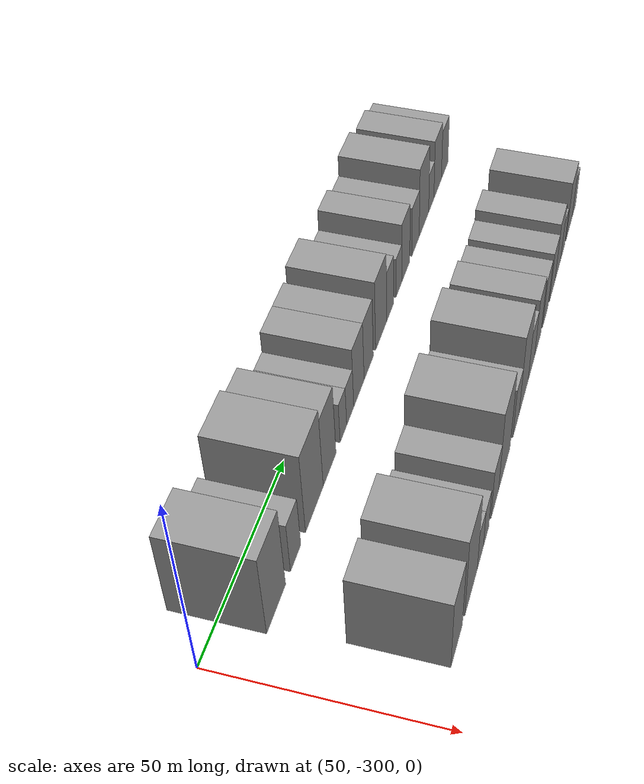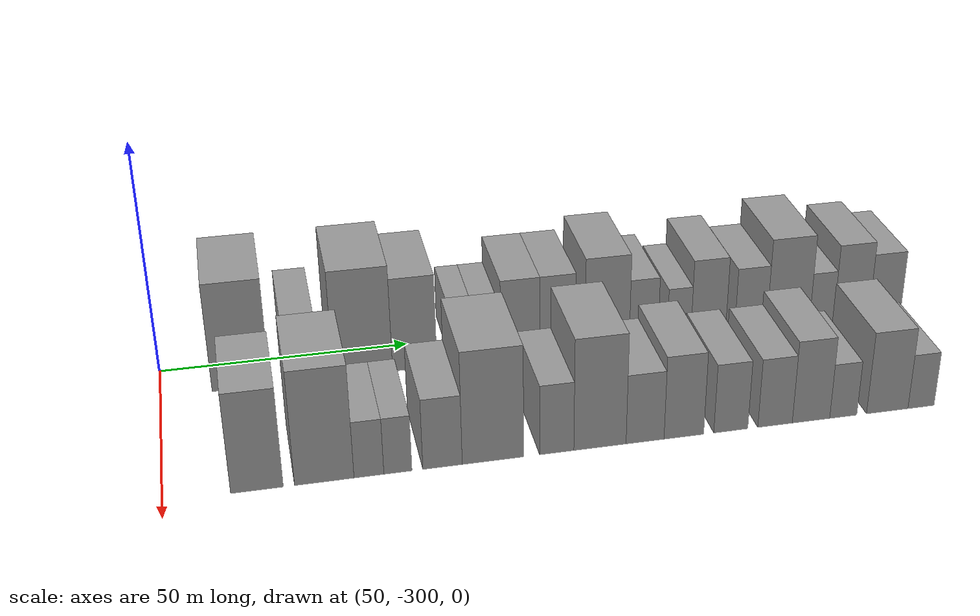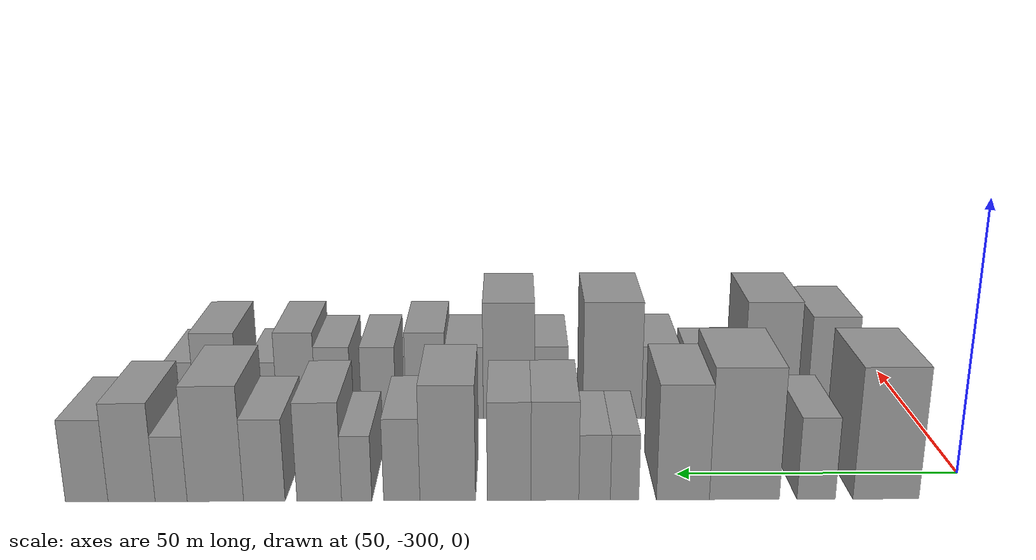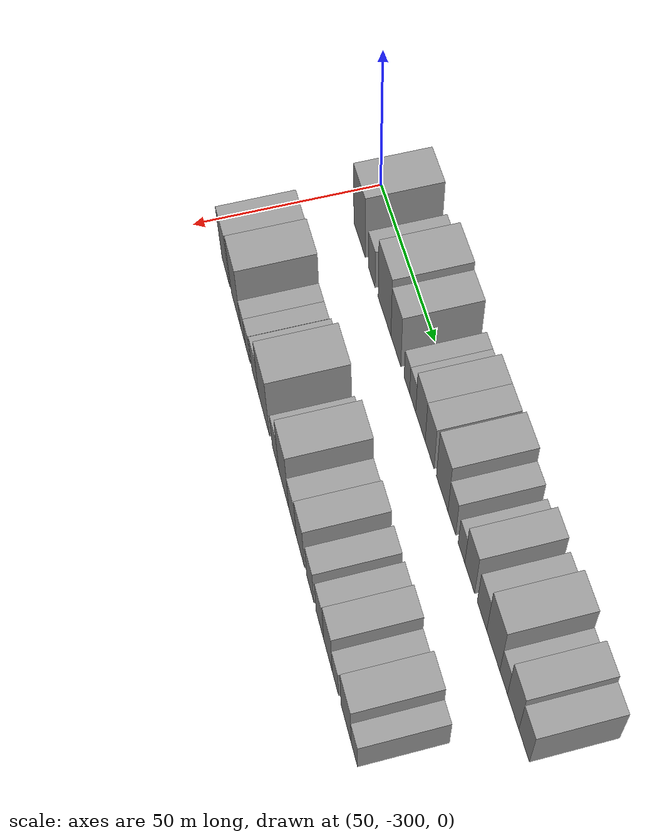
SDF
<sdf version="1.6">
 <world name="default">
  <model name="building_1">
   <static>1</static>
   <pose>50.0000 -284.3592 0 0.000000 0.000000 0.000000</pose>
   <link name="link">
    <pose>0 0 12.00 0 0 0</pose>
    <collision name="collision"><geometry><box><size>20.0000 11.2816 24.0000</size></box></geometry></collision>
    <visual name="visual">
     <cast_shadows>0</cast_shadows>
     <geometry><box><size>20.0000 11.2816 24.0000</size></box></geometry>
     <material>
      <script>
       <uri>model://grey_wall/materials/scripts</uri>
       <uri>model://grey_wall/materials/textures</uri>
       <name>vrc/grey_wall</name>
      </script>
     </material>
    </visual>
   </link>
  </model>
  <model name="building_2">
   <static>1</static>
   <pose>50.0000 -272.4377 0 0.000000 0.000000 0.000000</pose>
   <link name="link">
    <pose>0 0 7.50 0 0 0</pose>
    <collision name="collision"><geometry><box><size>20.0000 6.5613 15.0000</size></box></geometry></collision>
    <visual name="visual">
     <cast_shadows>0</cast_shadows>
     <geometry><box><size>20.0000 6.5613 15.0000</size></box></geometry>
     <material>
      <script>
       <uri>model://grey_wall/materials/scripts</uri>
       <uri>model://grey_wall/materials/textures</uri>
       <name>vrc/grey_wall</name>
      </script>
     </material>
    </visual>
   </link>
  </model>
  <model name="building_3">
   <static>1</static>
   <pose>50.0000 -260.1841 0 0.000000 0.000000 0.000000</pose>
   <link name="link">
    <pose>0 0 12.00 0 0 0</pose>
    <collision name="collision"><geometry><box><size>20.0000 11.9459 24.0000</size></box></geometry></collision>
    <visual name="visual">
     <cast_shadows>0</cast_shadows>
     <geometry><box><size>20.0000 11.9459 24.0000</size></box></geometry>
     <material>
      <script>
       <uri>model://grey_wall/materials/scripts</uri>
       <uri>model://grey_wall/materials/textures</uri>
       <name>vrc/grey_wall</name>
      </script>
     </material>
    </visual>
   </link>
  </model>
  <model name="building_4">
   <static>1</static>
   <pose>50.0000 -249.6946 0 0.000000 0.000000 0.000000</pose>
   <link name="link">
    <pose>0 0 10.50 0 0 0</pose>
    <collision name="collision"><geometry><box><size>20.0000 9.0331 21.0000</size></box></geometry></collision>
    <visual name="visual">
     <cast_shadows>0</cast_shadows>
     <geometry><box><size>20.0000 9.0331 21.0000</size></box></geometry>
     <material>
      <script>
       <uri>model://grey_wall/materials/scripts</uri>
       <uri>model://grey_wall/materials/textures</uri>
       <name>vrc/grey_wall</name>
      </script>
     </material>
    </visual>
   </link>
  </model>
  <model name="building_5">
   <static>1</static>
   <pose>50.0000 -239.7531 0 0.000000 0.000000 0.000000</pose>
   <link name="link">
    <pose>0 0 6.00 0 0 0</pose>
    <collision name="collision"><geometry><box><size>20.0000 4.8501 12.0000</size></box></geometry></collision>
    <visual name="visual">
     <cast_shadows>0</cast_shadows>
     <geometry><box><size>20.0000 4.8501 12.0000</size></box></geometry>
     <material>
      <script>
       <uri>model://grey_wall/materials/scripts</uri>
       <uri>model://grey_wall/materials/textures</uri>
       <name>vrc/grey_wall</name>
      </script>
     </material>
    </visual>
   </link>
  </model>
  <model name="building_6">
   <static>1</static>
   <pose>50.0000 -234.6435 0 0.000000 0.000000 0.000000</pose>
   <link name="link">
    <pose>0 0 6.00 0 0 0</pose>
    <collision name="collision"><geometry><box><size>20.0000 5.3691 12.0000</size></box></geometry></collision>
    <visual name="visual">
     <cast_shadows>0</cast_shadows>
     <geometry><box><size>20.0000 5.3691 12.0000</size></box></geometry>
     <material>
      <script>
       <uri>model://grey_wall/materials/scripts</uri>
       <uri>model://grey_wall/materials/textures</uri>
       <name>vrc/grey_wall</name>
      </script>
     </material>
    </visual>
   </link>
  </model>
  <model name="building_7">
   <static>1</static>
   <pose>50.0000 -227.8935 0 0.000000 0.000000 0.000000</pose>
   <link name="link">
    <pose>0 0 9.00 0 0 0</pose>
    <collision name="collision"><geometry><box><size>20.0000 8.1309 18.0000</size></box></geometry></collision>
    <visual name="visual">
     <cast_shadows>0</cast_shadows>
     <geometry><box><size>20.0000 8.1309 18.0000</size></box></geometry>
     <material>
      <script>
       <uri>model://grey_wall/materials/scripts</uri>
       <uri>model://grey_wall/materials/textures</uri>
       <name>vrc/grey_wall</name>
      </script>
     </material>
    </visual>
   </link>
  </model>
  <model name="building_8">
   <static>1</static>
   <pose>50.0000 -220.1073 0 0.000000 0.000000 0.000000</pose>
   <link name="link">
    <pose>0 0 9.00 0 0 0</pose>
    <collision name="collision"><geometry><box><size>20.0000 7.4415 18.0000</size></box></geometry></collision>
    <visual name="visual">
     <cast_shadows>0</cast_shadows>
     <geometry><box><size>20.0000 7.4415 18.0000</size></box></geometry>
     <material>
      <script>
       <uri>model://grey_wall/materials/scripts</uri>
       <uri>model://grey_wall/materials/textures</uri>
       <name>vrc/grey_wall</name>
      </script>
     </material>
    </visual>
   </link>
  </model>
  <model name="building_9">
   <static>1</static>
   <pose>50.0000 -209.6560 0 0.000000 0.000000 0.000000</pose>
   <link name="link">
    <pose>0 0 10.50 0 0 0</pose>
    <collision name="collision"><geometry><box><size>20.0000 9.4611 21.0000</size></box></geometry></collision>
    <visual name="visual">
     <cast_shadows>0</cast_shadows>
     <geometry><box><size>20.0000 9.4611 21.0000</size></box></geometry>
     <material>
      <script>
       <uri>model://grey_wall/materials/scripts</uri>
       <uri>model://grey_wall/materials/textures</uri>
       <name>vrc/grey_wall</name>
      </script>
     </material>
    </visual>
   </link>
  </model>
  <model name="building_10">
   <static>1</static>
   <pose>50.0000 -201.8469 0 0.000000 0.000000 0.000000</pose>
   <link name="link">
    <pose>0 0 7.50 0 0 0</pose>
    <collision name="collision"><geometry><box><size>20.0000 6.1570 15.0000</size></box></geometry></collision>
    <visual name="visual">
     <cast_shadows>0</cast_shadows>
     <geometry><box><size>20.0000 6.1570 15.0000</size></box></geometry>
     <material>
      <script>
       <uri>model://grey_wall/materials/scripts</uri>
       <uri>model://grey_wall/materials/textures</uri>
       <name>vrc/grey_wall</name>
      </script>
     </material>
    </visual>
   </link>
  </model>
  <model name="building_11">
   <static>1</static>
   <pose>50.0000 -194.1964 0 0.000000 0.000000 0.000000</pose>
   <link name="link">
    <pose>0 0 6.00 0 0 0</pose>
    <collision name="collision"><geometry><box><size>20.0000 5.1440 12.0000</size></box></geometry></collision>
    <visual name="visual">
     <cast_shadows>0</cast_shadows>
     <geometry><box><size>20.0000 5.1440 12.0000</size></box></geometry>
     <material>
      <script>
       <uri>model://grey_wall/materials/scripts</uri>
       <uri>model://grey_wall/materials/textures</uri>
       <name>vrc/grey_wall</name>
      </script>
     </material>
    </visual>
   </link>
  </model>
  <model name="building_12">
   <static>1</static>
   <pose>50.0000 -187.8328 0 0.000000 0.000000 0.000000</pose>
   <link name="link">
    <pose>0 0 9.00 0 0 0</pose>
    <collision name="collision"><geometry><box><size>20.0000 7.5832 18.0000</size></box></geometry></collision>
    <visual name="visual">
     <cast_shadows>0</cast_shadows>
     <geometry><box><size>20.0000 7.5832 18.0000</size></box></geometry>
     <material>
      <script>
       <uri>model://grey_wall/materials/scripts</uri>
       <uri>model://grey_wall/materials/textures</uri>
       <name>vrc/grey_wall</name>
      </script>
     </material>
    </visual>
   </link>
  </model>
  <model name="building_13">
   <static>1</static>
   <pose>50.0000 -178.5126 0 0.000000 0.000000 0.000000</pose>
   <link name="link">
    <pose>0 0 7.50 0 0 0</pose>
    <collision name="collision"><geometry><box><size>20.0000 7.0572 15.0000</size></box></geometry></collision>
    <visual name="visual">
     <cast_shadows>0</cast_shadows>
     <geometry><box><size>20.0000 7.0572 15.0000</size></box></geometry>
     <material>
      <script>
       <uri>model://grey_wall/materials/scripts</uri>
       <uri>model://grey_wall/materials/textures</uri>
       <name>vrc/grey_wall</name>
      </script>
     </material>
    </visual>
   </link>
  </model>
  <model name="building_14">
   <static>1</static>
   <pose>50.0000 -170.2077 0 0.000000 0.000000 0.000000</pose>
   <link name="link">
    <pose>0 0 10.50 0 0 0</pose>
    <collision name="collision"><geometry><box><size>20.0000 9.5524 21.0000</size></box></geometry></collision>
    <visual name="visual">
     <cast_shadows>0</cast_shadows>
     <geometry><box><size>20.0000 9.5524 21.0000</size></box></geometry>
     <material>
      <script>
       <uri>model://grey_wall/materials/scripts</uri>
       <uri>model://grey_wall/materials/textures</uri>
       <name>vrc/grey_wall</name>
      </script>
     </material>
    </visual>
   </link>
  </model>
  <model name="building_15">
   <static>1</static>
   <pose>50.0000 -162.7156 0 0.000000 0.000000 0.000000</pose>
   <link name="link">
    <pose>0 0 6.00 0 0 0</pose>
    <collision name="collision"><geometry><box><size>20.0000 5.4319 12.0000</size></box></geometry></collision>
    <visual name="visual">
     <cast_shadows>0</cast_shadows>
     <geometry><box><size>20.0000 5.4319 12.0000</size></box></geometry>
     <material>
      <script>
       <uri>model://grey_wall/materials/scripts</uri>
       <uri>model://grey_wall/materials/textures</uri>
       <name>vrc/grey_wall</name>
      </script>
     </material>
    </visual>
   </link>
  </model>
  <model name="building_16">
   <static>1</static>
   <pose>50.0000 -156.0095 0 0.000000 0.000000 0.000000</pose>
   <link name="link">
    <pose>0 0 9.00 0 0 0</pose>
    <collision name="collision"><geometry><box><size>20.0000 7.9802 18.0000</size></box></geometry></collision>
    <visual name="visual">
     <cast_shadows>0</cast_shadows>
     <geometry><box><size>20.0000 7.9802 18.0000</size></box></geometry>
     <material>
      <script>
       <uri>model://grey_wall/materials/scripts</uri>
       <uri>model://grey_wall/materials/textures</uri>
       <name>vrc/grey_wall</name>
      </script>
     </material>
    </visual>
   </link>
  </model>
  <model name="building_17">
   <static>1</static>
   <pose>50.0000 -148.4073 0 0.000000 0.000000 0.000000</pose>
   <link name="link">
    <pose>0 0 7.50 0 0 0</pose>
    <collision name="collision"><geometry><box><size>20.0000 7.2241 15.0000</size></box></geometry></collision>
    <visual name="visual">
     <cast_shadows>0</cast_shadows>
     <geometry><box><size>20.0000 7.2241 15.0000</size></box></geometry>
     <material>
      <script>
       <uri>model://grey_wall/materials/scripts</uri>
       <uri>model://grey_wall/materials/textures</uri>
       <name>vrc/grey_wall</name>
      </script>
     </material>
    </visual>
   </link>
  </model>
  <model name="building_67">
   <static>1</static>
   <pose>85.0000 -283.3280 0 0.000000 0.000000 0.000000</pose>
   <link name="link">
    <pose>0 0 10.50 0 0 0</pose>
    <collision name="collision"><geometry><box><size>20.0000 9.3441 21.0000</size></box></geometry></collision>
    <visual name="visual">
     <cast_shadows>0</cast_shadows>
     <geometry><box><size>20.0000 9.3441 21.0000</size></box></geometry>
     <material>
      <script>
       <uri>model://grey_wall/materials/scripts</uri>
       <uri>model://grey_wall/materials/textures</uri>
       <name>vrc/grey_wall</name>
      </script>
     </material>
    </visual>
   </link>
  </model>
  <model name="building_68">
   <static>1</static>
   <pose>85.0000 -271.2954 0 0.000000 0.000000 0.000000</pose>
   <link name="link">
    <pose>0 0 12.00 0 0 0</pose>
    <collision name="collision"><geometry><box><size>20.0000 10.7210 24.0000</size></box></geometry></collision>
    <visual name="visual">
     <cast_shadows>0</cast_shadows>
     <geometry><box><size>20.0000 10.7210 24.0000</size></box></geometry>
     <material>
      <script>
       <uri>model://grey_wall/materials/scripts</uri>
       <uri>model://grey_wall/materials/textures</uri>
       <name>vrc/grey_wall</name>
      </script>
     </material>
    </visual>
   </link>
  </model>
  <model name="building_69">
   <static>1</static>
   <pose>85.0000 -263.2185 0 0.000000 0.000000 0.000000</pose>
   <link name="link">
    <pose>0 0 6.00 0 0 0</pose>
    <collision name="collision"><geometry><box><size>20.0000 5.4327 12.0000</size></box></geometry></collision>
    <visual name="visual">
     <cast_shadows>0</cast_shadows>
     <geometry><box><size>20.0000 5.4327 12.0000</size></box></geometry>
     <material>
      <script>
       <uri>model://grey_wall/materials/scripts</uri>
       <uri>model://grey_wall/materials/textures</uri>
       <name>vrc/grey_wall</name>
      </script>
     </material>
    </visual>
   </link>
  </model>
  <model name="building_70">
   <static>1</static>
   <pose>85.0000 -257.9267 0 0.000000 0.000000 0.000000</pose>
   <link name="link">
    <pose>0 0 6.00 0 0 0</pose>
    <collision name="collision"><geometry><box><size>20.0000 5.1511 12.0000</size></box></geometry></collision>
    <visual name="visual">
     <cast_shadows>0</cast_shadows>
     <geometry><box><size>20.0000 5.1511 12.0000</size></box></geometry>
     <material>
      <script>
       <uri>model://grey_wall/materials/scripts</uri>
       <uri>model://grey_wall/materials/textures</uri>
       <name>vrc/grey_wall</name>
      </script>
     </material>
    </visual>
   </link>
  </model>
  <model name="building_71">
   <static>1</static>
   <pose>85.0000 -249.7051 0 0.000000 0.000000 0.000000</pose>
   <link name="link">
    <pose>0 0 7.50 0 0 0</pose>
    <collision name="collision"><geometry><box><size>20.0000 7.2920 15.0000</size></box></geometry></collision>
    <visual name="visual">
     <cast_shadows>0</cast_shadows>
     <geometry><box><size>20.0000 7.2920 15.0000</size></box></geometry>
     <material>
      <script>
       <uri>model://grey_wall/materials/scripts</uri>
       <uri>model://grey_wall/materials/textures</uri>
       <name>vrc/grey_wall</name>
      </script>
     </material>
    </visual>
   </link>
  </model>
  <model name="building_72">
   <static>1</static>
   <pose>85.0000 -240.2894 0 0.000000 0.000000 0.000000</pose>
   <link name="link">
    <pose>0 0 12.00 0 0 0</pose>
    <collision name="collision"><geometry><box><size>20.0000 11.5393 24.0000</size></box></geometry></collision>
    <visual name="visual">
     <cast_shadows>0</cast_shadows>
     <geometry><box><size>20.0000 11.5393 24.0000</size></box></geometry>
     <material>
      <script>
       <uri>model://grey_wall/materials/scripts</uri>
       <uri>model://grey_wall/materials/textures</uri>
       <name>vrc/grey_wall</name>
      </script>
     </material>
    </visual>
   </link>
  </model>
  <model name="building_73">
   <static>1</static>
   <pose>85.0000 -228.2674 0 0.000000 0.000000 0.000000</pose>
   <link name="link">
    <pose>0 0 7.50 0 0 0</pose>
    <collision name="collision"><geometry><box><size>20.0000 6.5048 15.0000</size></box></geometry></collision>
    <visual name="visual">
     <cast_shadows>0</cast_shadows>
     <geometry><box><size>20.0000 6.5048 15.0000</size></box></geometry>
     <material>
      <script>
       <uri>model://grey_wall/materials/scripts</uri>
       <uri>model://grey_wall/materials/textures</uri>
       <name>vrc/grey_wall</name>
      </script>
     </material>
    </visual>
   </link>
  </model>
  <model name="building_74">
   <static>1</static>
   <pose>85.0000 -219.9922 0 0.000000 0.000000 0.000000</pose>
   <link name="link">
    <pose>0 0 12.00 0 0 0</pose>
    <collision name="collision"><geometry><box><size>20.0000 10.0457 24.0000</size></box></geometry></collision>
    <visual name="visual">
     <cast_shadows>0</cast_shadows>
     <geometry><box><size>20.0000 10.0457 24.0000</size></box></geometry>
     <material>
      <script>
       <uri>model://grey_wall/materials/scripts</uri>
       <uri>model://grey_wall/materials/textures</uri>
       <name>vrc/grey_wall</name>
      </script>
     </material>
    </visual>
   </link>
  </model>
  <model name="building_75">
   <static>1</static>
   <pose>85.0000 -211.2774 0 0.000000 0.000000 0.000000</pose>
   <link name="link">
    <pose>0 0 7.50 0 0 0</pose>
    <collision name="collision"><geometry><box><size>20.0000 7.3838 15.0000</size></box></geometry></collision>
    <visual name="visual">
     <cast_shadows>0</cast_shadows>
     <geometry><box><size>20.0000 7.3838 15.0000</size></box></geometry>
     <material>
      <script>
       <uri>model://grey_wall/materials/scripts</uri>
       <uri>model://grey_wall/materials/textures</uri>
       <name>vrc/grey_wall</name>
      </script>
     </material>
    </visual>
   </link>
  </model>
  <model name="building_76">
   <static>1</static>
   <pose>85.0000 -203.6915 0 0.000000 0.000000 0.000000</pose>
   <link name="link">
    <pose>0 0 9.00 0 0 0</pose>
    <collision name="collision"><geometry><box><size>20.0000 7.7880 18.0000</size></box></geometry></collision>
    <visual name="visual">
     <cast_shadows>0</cast_shadows>
     <geometry><box><size>20.0000 7.7880 18.0000</size></box></geometry>
     <material>
      <script>
       <uri>model://grey_wall/materials/scripts</uri>
       <uri>model://grey_wall/materials/textures</uri>
       <name>vrc/grey_wall</name>
      </script>
     </material>
    </visual>
   </link>
  </model>
  <model name="building_77">
   <static>1</static>
   <pose>85.0000 -194.4178 0 0.000000 0.000000 0.000000</pose>
   <link name="link">
    <pose>0 0 7.50 0 0 0</pose>
    <collision name="collision"><geometry><box><size>20.0000 6.7595 15.0000</size></box></geometry></collision>
    <visual name="visual">
     <cast_shadows>0</cast_shadows>
     <geometry><box><size>20.0000 6.7595 15.0000</size></box></geometry>
     <material>
      <script>
       <uri>model://grey_wall/materials/scripts</uri>
       <uri>model://grey_wall/materials/textures</uri>
       <name>vrc/grey_wall</name>
      </script>
     </material>
    </visual>
   </link>
  </model>
  <model name="building_78">
   <static>1</static>
   <pose>85.0000 -185.5821 0 0.000000 0.000000 0.000000</pose>
   <link name="link">
    <pose>0 0 7.50 0 0 0</pose>
    <collision name="collision"><geometry><box><size>20.0000 6.9118 15.0000</size></box></geometry></collision>
    <visual name="visual">
     <cast_shadows>0</cast_shadows>
     <geometry><box><size>20.0000 6.9118 15.0000</size></box></geometry>
     <material>
      <script>
       <uri>model://grey_wall/materials/scripts</uri>
       <uri>model://grey_wall/materials/textures</uri>
       <name>vrc/grey_wall</name>
      </script>
     </material>
    </visual>
   </link>
  </model>
  <model name="building_79">
   <static>1</static>
   <pose>85.0000 -178.3327 0 0.000000 0.000000 0.000000</pose>
   <link name="link">
    <pose>0 0 9.00 0 0 0</pose>
    <collision name="collision"><geometry><box><size>20.0000 7.5872 18.0000</size></box></geometry></collision>
    <visual name="visual">
     <cast_shadows>0</cast_shadows>
     <geometry><box><size>20.0000 7.5872 18.0000</size></box></geometry>
     <material>
      <script>
       <uri>model://grey_wall/materials/scripts</uri>
       <uri>model://grey_wall/materials/textures</uri>
       <name>vrc/grey_wall</name>
      </script>
     </material>
    </visual>
   </link>
  </model>
  <model name="building_80">
   <static>1</static>
   <pose>85.0000 -171.7712 0 0.000000 0.000000 0.000000</pose>
   <link name="link">
    <pose>0 0 6.00 0 0 0</pose>
    <collision name="collision"><geometry><box><size>20.0000 5.5357 12.0000</size></box></geometry></collision>
    <visual name="visual">
     <cast_shadows>0</cast_shadows>
     <geometry><box><size>20.0000 5.5357 12.0000</size></box></geometry>
     <material>
      <script>
       <uri>model://grey_wall/materials/scripts</uri>
       <uri>model://grey_wall/materials/textures</uri>
       <name>vrc/grey_wall</name>
      </script>
     </material>
    </visual>
   </link>
  </model>
  <model name="building_81">
   <static>1</static>
   <pose>85.0000 -162.7266 0 0.000000 0.000000 0.000000</pose>
   <link name="link">
    <pose>0 0 9.00 0 0 0</pose>
    <collision name="collision"><geometry><box><size>20.0000 8.5536 18.0000</size></box></geometry></collision>
    <visual name="visual">
     <cast_shadows>0</cast_shadows>
     <geometry><box><size>20.0000 8.5536 18.0000</size></box></geometry>
     <material>
      <script>
       <uri>model://grey_wall/materials/scripts</uri>
       <uri>model://grey_wall/materials/textures</uri>
       <name>vrc/grey_wall</name>
      </script>
     </material>
    </visual>
   </link>
  </model>
  <model name="building_82">
   <static>1</static>
   <pose>85.0000 -155.7339 0 0.000000 0.000000 0.000000</pose>
   <link name="link">
    <pose>0 0 6.00 0 0 0</pose>
    <collision name="collision"><geometry><box><size>20.0000 5.4317 12.0000</size></box></geometry></collision>
    <visual name="visual">
     <cast_shadows>0</cast_shadows>
     <geometry><box><size>20.0000 5.4317 12.0000</size></box></geometry>
     <material>
      <script>
       <uri>model://grey_wall/materials/scripts</uri>
       <uri>model://grey_wall/materials/textures</uri>
       <name>vrc/grey_wall</name>
      </script>
     </material>
    </visual>
   </link>
  </model>
 </world>
</sdf>
